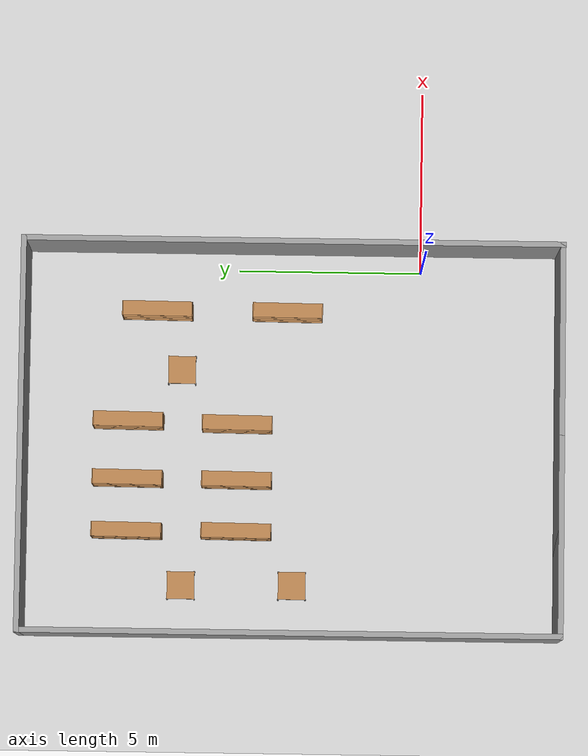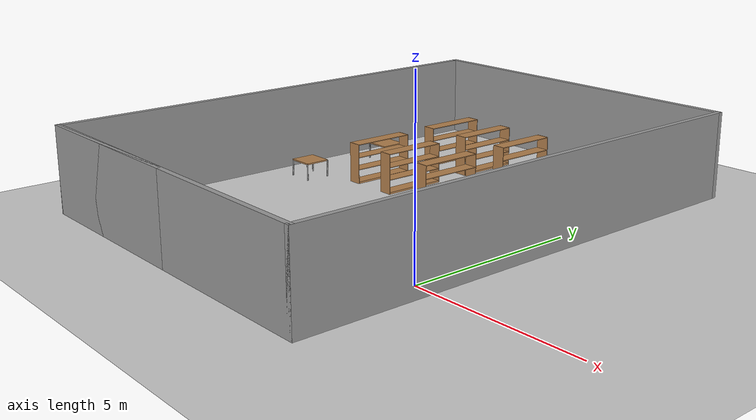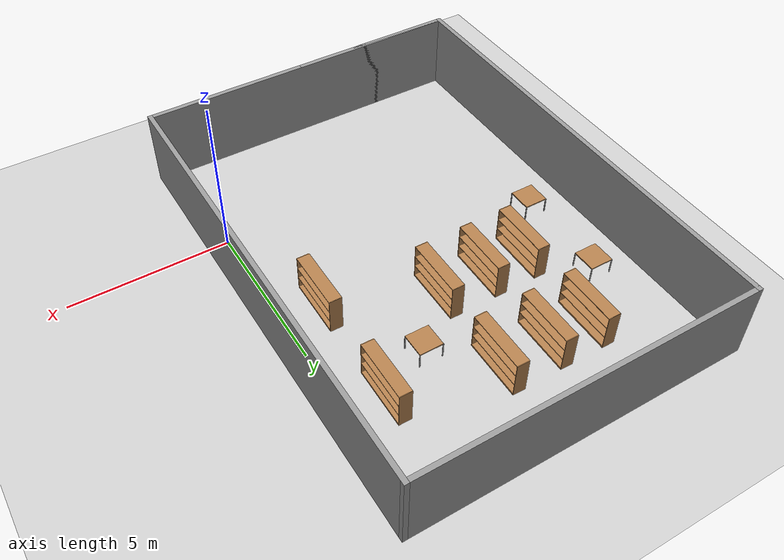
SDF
<sdf version="1.6">
 <world name="default">
  <model name="ground_plane">
   <static>1</static>
   <link name="link">
    <collision name="collision">
     <geometry><plane><normal>0 0 1</normal><size>100 100</size></plane></geometry>
     <surface><friction><ode><mu>100</mu><mu2>50</mu2></ode></friction></surface>
    </collision>
    <visual name="visual">
     <cast_shadows>0</cast_shadows>
     <geometry><plane><normal>0 0 1</normal><size>100 100</size></plane></geometry>
     <material>
      <script><uri>file://media/materials/scripts/gazebo.material</uri><name>Gazebo/Grey</name></script>
     </material>
    </visual>
   </link>
  </model>
  <model name="library_bookshelf_twosided">
   <static>1</static>
   <link name="link">
    <inertial><mass>1</mass></inertial>
    <collision name="left_side">
     <pose>0.95 -0.195 0.6 0 -0 0</pose>
     <geometry><box><size>0.02 0.4 1.2</size></box></geometry>
    </collision>
    <visual name="left_side">
     <pose>0.95 -0.195 0.6 0 -0 0</pose>
     <geometry><box><size>0.02 0.4 1.2</size></box></geometry>
     <material>
      <script><uri>file://media/materials/scripts/gazebo.material</uri><name>Gazebo/Wood</name></script>
     </material>
    </visual>
    <collision name="right_side">
     <pose>-0.95 -0.195 0.6 0 -0 0</pose>
     <geometry><box><size>0.02 0.4 1.2</size></box></geometry>
    </collision>
    <visual name="right_side">
     <pose>-0.95 -0.195 0.6 0 -0 0</pose>
     <geometry><box><size>0.02 0.4 1.2</size></box></geometry>
     <material>
      <script><uri>file://media/materials/scripts/gazebo.material</uri><name>Gazebo/Wood</name></script>
     </material>
    </visual>
    <collision name="bottom">
     <pose>0 -0.195 0.03 0 -0 0</pose>
     <geometry><box><size>1.88 0.4 0.06</size></box></geometry>
    </collision>
    <visual name="bottom">
     <pose>0 -0.195 0.03 0 -0 0</pose>
     <geometry><box><size>1.88 0.4 0.06</size></box></geometry>
     <material>
      <script><uri>file://media/materials/scripts/gazebo.material</uri><name>Gazebo/Wood</name></script>
     </material>
    </visual>
    <collision name="top">
     <pose>0 -0.195 1.19 0 -0 0</pose>
     <geometry><box><size>1.88 0.4 0.02</size></box></geometry>
    </collision>
    <visual name="top">
     <pose>0 -0.195 1.19 0 -0 0</pose>
     <geometry><box><size>1.88 0.4 0.02</size></box></geometry>
     <material>
      <script><uri>file://media/materials/scripts/gazebo.material</uri><name>Gazebo/Wood</name></script>
     </material>
    </visual>
    <collision name="low_shelf">
     <pose>0 -0.195 0.43 0 -0 0</pose>
     <geometry><box><size>1.88 0.4 0.02</size></box></geometry>
    </collision>
    <visual name="low_shelf">
     <pose>0 -0.195 0.43 0 -0 0</pose>
     <geometry><box><size>1.88 0.4 0.02</size></box></geometry>
     <material>
      <script><uri>file://media/materials/scripts/gazebo.material</uri><name>Gazebo/Wood</name></script>
     </material>
    </visual>
    <collision name="high_shelf">
     <pose>0 -0.195 0.8 0 -0 0</pose>
     <geometry><box><size>1.88 0.4 0.02</size></box></geometry>
    </collision>
    <visual name="high_shelf">
     <pose>0 -0.195 0.8 0 -0 0</pose>
     <geometry><box><size>1.88 0.4 0.02</size></box></geometry>
     <material>
      <script><uri>file://media/materials/scripts/gazebo.material</uri><name>Gazebo/Wood</name></script>
     </material>
    </visual>
   </link>
   <pose>-7.03794 7.96964 0 0 0 -1.58098</pose>
  </model>
  <model name="library_bookshelf_twosided_clone">
   <static>1</static>
   <link name="link">
    <inertial><mass>1</mass></inertial>
    <collision name="left_side">
     <pose>0.95 -0.195 0.6 0 -0 0</pose>
     <geometry><box><size>0.02 0.4 1.2</size></box></geometry>
    </collision>
    <visual name="left_side">
     <pose>0.95 -0.195 0.6 0 -0 0</pose>
     <geometry><box><size>0.02 0.4 1.2</size></box></geometry>
     <material>
      <script><uri>file://media/materials/scripts/gazebo.material</uri><name>Gazebo/Wood</name></script>
     </material>
    </visual>
    <collision name="right_side">
     <pose>-0.95 -0.195 0.6 0 -0 0</pose>
     <geometry><box><size>0.02 0.4 1.2</size></box></geometry>
    </collision>
    <visual name="right_side">
     <pose>-0.95 -0.195 0.6 0 -0 0</pose>
     <geometry><box><size>0.02 0.4 1.2</size></box></geometry>
     <material>
      <script><uri>file://media/materials/scripts/gazebo.material</uri><name>Gazebo/Wood</name></script>
     </material>
    </visual>
    <collision name="bottom">
     <pose>0 -0.195 0.03 0 -0 0</pose>
     <geometry><box><size>1.88 0.4 0.06</size></box></geometry>
    </collision>
    <visual name="bottom">
     <pose>0 -0.195 0.03 0 -0 0</pose>
     <geometry><box><size>1.88 0.4 0.06</size></box></geometry>
     <material>
      <script><uri>file://media/materials/scripts/gazebo.material</uri><name>Gazebo/Wood</name></script>
     </material>
    </visual>
    <collision name="top">
     <pose>0 -0.195 1.19 0 -0 0</pose>
     <geometry><box><size>1.88 0.4 0.02</size></box></geometry>
    </collision>
    <visual name="top">
     <pose>0 -0.195 1.19 0 -0 0</pose>
     <geometry><box><size>1.88 0.4 0.02</size></box></geometry>
     <material>
      <script><uri>file://media/materials/scripts/gazebo.material</uri><name>Gazebo/Wood</name></script>
     </material>
    </visual>
    <collision name="low_shelf">
     <pose>0 -0.195 0.43 0 -0 0</pose>
     <geometry><box><size>1.88 0.4 0.02</size></box></geometry>
    </collision>
    <visual name="low_shelf">
     <pose>0 -0.195 0.43 0 -0 0</pose>
     <geometry><box><size>1.88 0.4 0.02</size></box></geometry>
     <material>
      <script><uri>file://media/materials/scripts/gazebo.material</uri><name>Gazebo/Wood</name></script>
     </material>
    </visual>
    <collision name="high_shelf">
     <pose>0 -0.195 0.8 0 -0 0</pose>
     <geometry><box><size>1.88 0.4 0.02</size></box></geometry>
    </collision>
    <visual name="high_shelf">
     <pose>0 -0.195 0.8 0 -0 0</pose>
     <geometry><box><size>1.88 0.4 0.02</size></box></geometry>
     <material>
      <script><uri>file://media/materials/scripts/gazebo.material</uri><name>Gazebo/Wood</name></script>
     </material>
    </visual>
   </link>
   <pose>-7.02783 4.98074 0 0 0 -1.58098</pose>
  </model>
  <model name="library_bookshelf_twosided_clone_2">
   <static>1</static>
   <link name="link">
    <inertial><mass>1</mass></inertial>
    <collision name="left_side">
     <pose>0.95 -0.195 0.6 0 -0 0</pose>
     <geometry><box><size>0.02 0.4 1.2</size></box></geometry>
    </collision>
    <visual name="left_side">
     <pose>0.95 -0.195 0.6 0 -0 0</pose>
     <geometry><box><size>0.02 0.4 1.2</size></box></geometry>
     <material>
      <script><uri>file://media/materials/scripts/gazebo.material</uri><name>Gazebo/Wood</name></script>
     </material>
    </visual>
    <collision name="right_side">
     <pose>-0.95 -0.195 0.6 0 -0 0</pose>
     <geometry><box><size>0.02 0.4 1.2</size></box></geometry>
    </collision>
    <visual name="right_side">
     <pose>-0.95 -0.195 0.6 0 -0 0</pose>
     <geometry><box><size>0.02 0.4 1.2</size></box></geometry>
     <material>
      <script><uri>file://media/materials/scripts/gazebo.material</uri><name>Gazebo/Wood</name></script>
     </material>
    </visual>
    <collision name="bottom">
     <pose>0 -0.195 0.03 0 -0 0</pose>
     <geometry><box><size>1.88 0.4 0.06</size></box></geometry>
    </collision>
    <visual name="bottom">
     <pose>0 -0.195 0.03 0 -0 0</pose>
     <geometry><box><size>1.88 0.4 0.06</size></box></geometry>
     <material>
      <script><uri>file://media/materials/scripts/gazebo.material</uri><name>Gazebo/Wood</name></script>
     </material>
    </visual>
    <collision name="top">
     <pose>0 -0.195 1.19 0 -0 0</pose>
     <geometry><box><size>1.88 0.4 0.02</size></box></geometry>
    </collision>
    <visual name="top">
     <pose>0 -0.195 1.19 0 -0 0</pose>
     <geometry><box><size>1.88 0.4 0.02</size></box></geometry>
     <material>
      <script><uri>file://media/materials/scripts/gazebo.material</uri><name>Gazebo/Wood</name></script>
     </material>
    </visual>
    <collision name="low_shelf">
     <pose>0 -0.195 0.43 0 -0 0</pose>
     <geometry><box><size>1.88 0.4 0.02</size></box></geometry>
    </collision>
    <visual name="low_shelf">
     <pose>0 -0.195 0.43 0 -0 0</pose>
     <geometry><box><size>1.88 0.4 0.02</size></box></geometry>
     <material>
      <script><uri>file://media/materials/scripts/gazebo.material</uri><name>Gazebo/Wood</name></script>
     </material>
    </visual>
    <collision name="high_shelf">
     <pose>0 -0.195 0.8 0 -0 0</pose>
     <geometry><box><size>1.88 0.4 0.02</size></box></geometry>
    </collision>
    <visual name="high_shelf">
     <pose>0 -0.195 0.8 0 -0 0</pose>
     <geometry><box><size>1.88 0.4 0.02</size></box></geometry>
     <material>
      <script><uri>file://media/materials/scripts/gazebo.material</uri><name>Gazebo/Wood</name></script>
     </material>
    </visual>
   </link>
   <pose>-5.62201 4.9859 0 0 0 -1.58098</pose>
  </model>
  <model name="library_bookshelf_twosided_clone_3">
   <static>1</static>
   <link name="link">
    <inertial><mass>1</mass></inertial>
    <collision name="left_side">
     <pose>0.95 -0.195 0.6 0 -0 0</pose>
     <geometry><box><size>0.02 0.4 1.2</size></box></geometry>
    </collision>
    <visual name="left_side">
     <pose>0.95 -0.195 0.6 0 -0 0</pose>
     <geometry><box><size>0.02 0.4 1.2</size></box></geometry>
     <material>
      <script><uri>file://media/materials/scripts/gazebo.material</uri><name>Gazebo/Wood</name></script>
     </material>
    </visual>
    <collision name="right_side">
     <pose>-0.95 -0.195 0.6 0 -0 0</pose>
     <geometry><box><size>0.02 0.4 1.2</size></box></geometry>
    </collision>
    <visual name="right_side">
     <pose>-0.95 -0.195 0.6 0 -0 0</pose>
     <geometry><box><size>0.02 0.4 1.2</size></box></geometry>
     <material>
      <script><uri>file://media/materials/scripts/gazebo.material</uri><name>Gazebo/Wood</name></script>
     </material>
    </visual>
    <collision name="bottom">
     <pose>0 -0.195 0.03 0 -0 0</pose>
     <geometry><box><size>1.88 0.4 0.06</size></box></geometry>
    </collision>
    <visual name="bottom">
     <pose>0 -0.195 0.03 0 -0 0</pose>
     <geometry><box><size>1.88 0.4 0.06</size></box></geometry>
     <material>
      <script><uri>file://media/materials/scripts/gazebo.material</uri><name>Gazebo/Wood</name></script>
     </material>
    </visual>
    <collision name="top">
     <pose>0 -0.195 1.19 0 -0 0</pose>
     <geometry><box><size>1.88 0.4 0.02</size></box></geometry>
    </collision>
    <visual name="top">
     <pose>0 -0.195 1.19 0 -0 0</pose>
     <geometry><box><size>1.88 0.4 0.02</size></box></geometry>
     <material>
      <script><uri>file://media/materials/scripts/gazebo.material</uri><name>Gazebo/Wood</name></script>
     </material>
    </visual>
    <collision name="low_shelf">
     <pose>0 -0.195 0.43 0 -0 0</pose>
     <geometry><box><size>1.88 0.4 0.02</size></box></geometry>
    </collision>
    <visual name="low_shelf">
     <pose>0 -0.195 0.43 0 -0 0</pose>
     <geometry><box><size>1.88 0.4 0.02</size></box></geometry>
     <material>
      <script><uri>file://media/materials/scripts/gazebo.material</uri><name>Gazebo/Wood</name></script>
     </material>
    </visual>
    <collision name="high_shelf">
     <pose>0 -0.195 0.8 0 -0 0</pose>
     <geometry><box><size>1.88 0.4 0.02</size></box></geometry>
    </collision>
    <visual name="high_shelf">
     <pose>0 -0.195 0.8 0 -0 0</pose>
     <geometry><box><size>1.88 0.4 0.02</size></box></geometry>
     <material>
      <script><uri>file://media/materials/scripts/gazebo.material</uri><name>Gazebo/Wood</name></script>
     </material>
    </visual>
   </link>
   <pose>-5.60611 7.96563 0 0 0 -1.58098</pose>
  </model>
  <model name="library_bookshelf_twosided_clone_5">
   <static>1</static>
   <link name="link">
    <inertial><mass>1</mass></inertial>
    <collision name="left_side">
     <pose>0.95 -0.195 0.6 0 -0 0</pose>
     <geometry><box><size>0.02 0.4 1.2</size></box></geometry>
    </collision>
    <visual name="left_side">
     <pose>0.95 -0.195 0.6 0 -0 0</pose>
     <geometry><box><size>0.02 0.4 1.2</size></box></geometry>
     <material>
      <script><uri>file://media/materials/scripts/gazebo.material</uri><name>Gazebo/Wood</name></script>
     </material>
    </visual>
    <collision name="right_side">
     <pose>-0.95 -0.195 0.6 0 -0 0</pose>
     <geometry><box><size>0.02 0.4 1.2</size></box></geometry>
    </collision>
    <visual name="right_side">
     <pose>-0.95 -0.195 0.6 0 -0 0</pose>
     <geometry><box><size>0.02 0.4 1.2</size></box></geometry>
     <material>
      <script><uri>file://media/materials/scripts/gazebo.material</uri><name>Gazebo/Wood</name></script>
     </material>
    </visual>
    <collision name="bottom">
     <pose>0 -0.195 0.03 0 -0 0</pose>
     <geometry><box><size>1.88 0.4 0.06</size></box></geometry>
    </collision>
    <visual name="bottom">
     <pose>0 -0.195 0.03 0 -0 0</pose>
     <geometry><box><size>1.88 0.4 0.06</size></box></geometry>
     <material>
      <script><uri>file://media/materials/scripts/gazebo.material</uri><name>Gazebo/Wood</name></script>
     </material>
    </visual>
    <collision name="top">
     <pose>0 -0.195 1.19 0 -0 0</pose>
     <geometry><box><size>1.88 0.4 0.02</size></box></geometry>
    </collision>
    <visual name="top">
     <pose>0 -0.195 1.19 0 -0 0</pose>
     <geometry><box><size>1.88 0.4 0.02</size></box></geometry>
     <material>
      <script><uri>file://media/materials/scripts/gazebo.material</uri><name>Gazebo/Wood</name></script>
     </material>
    </visual>
    <collision name="low_shelf">
     <pose>0 -0.195 0.43 0 -0 0</pose>
     <geometry><box><size>1.88 0.4 0.02</size></box></geometry>
    </collision>
    <visual name="low_shelf">
     <pose>0 -0.195 0.43 0 -0 0</pose>
     <geometry><box><size>1.88 0.4 0.02</size></box></geometry>
     <material>
      <script><uri>file://media/materials/scripts/gazebo.material</uri><name>Gazebo/Wood</name></script>
     </material>
    </visual>
    <collision name="high_shelf">
     <pose>0 -0.195 0.8 0 -0 0</pose>
     <geometry><box><size>1.88 0.4 0.02</size></box></geometry>
    </collision>
    <visual name="high_shelf">
     <pose>0 -0.195 0.8 0 -0 0</pose>
     <geometry><box><size>1.88 0.4 0.02</size></box></geometry>
     <material>
      <script><uri>file://media/materials/scripts/gazebo.material</uri><name>Gazebo/Wood</name></script>
     </material>
    </visual>
   </link>
   <pose>-4.0842 4.98932 0 0 0 -1.58098</pose>
  </model>
  <model name="library_bookshelf_twosided_clone_6">
   <static>1</static>
   <link name="link">
    <inertial><mass>1</mass></inertial>
    <collision name="left_side">
     <pose>0.95 -0.195 0.6 0 -0 0</pose>
     <geometry><box><size>0.02 0.4 1.2</size></box></geometry>
    </collision>
    <visual name="left_side">
     <pose>0.95 -0.195 0.6 0 -0 0</pose>
     <geometry><box><size>0.02 0.4 1.2</size></box></geometry>
     <material>
      <script><uri>file://media/materials/scripts/gazebo.material</uri><name>Gazebo/Wood</name></script>
     </material>
    </visual>
    <collision name="right_side">
     <pose>-0.95 -0.195 0.6 0 -0 0</pose>
     <geometry><box><size>0.02 0.4 1.2</size></box></geometry>
    </collision>
    <visual name="right_side">
     <pose>-0.95 -0.195 0.6 0 -0 0</pose>
     <geometry><box><size>0.02 0.4 1.2</size></box></geometry>
     <material>
      <script><uri>file://media/materials/scripts/gazebo.material</uri><name>Gazebo/Wood</name></script>
     </material>
    </visual>
    <collision name="bottom">
     <pose>0 -0.195 0.03 0 -0 0</pose>
     <geometry><box><size>1.88 0.4 0.06</size></box></geometry>
    </collision>
    <visual name="bottom">
     <pose>0 -0.195 0.03 0 -0 0</pose>
     <geometry><box><size>1.88 0.4 0.06</size></box></geometry>
     <material>
      <script><uri>file://media/materials/scripts/gazebo.material</uri><name>Gazebo/Wood</name></script>
     </material>
    </visual>
    <collision name="top">
     <pose>0 -0.195 1.19 0 -0 0</pose>
     <geometry><box><size>1.88 0.4 0.02</size></box></geometry>
    </collision>
    <visual name="top">
     <pose>0 -0.195 1.19 0 -0 0</pose>
     <geometry><box><size>1.88 0.4 0.02</size></box></geometry>
     <material>
      <script><uri>file://media/materials/scripts/gazebo.material</uri><name>Gazebo/Wood</name></script>
     </material>
    </visual>
    <collision name="low_shelf">
     <pose>0 -0.195 0.43 0 -0 0</pose>
     <geometry><box><size>1.88 0.4 0.02</size></box></geometry>
    </collision>
    <visual name="low_shelf">
     <pose>0 -0.195 0.43 0 -0 0</pose>
     <geometry><box><size>1.88 0.4 0.02</size></box></geometry>
     <material>
      <script><uri>file://media/materials/scripts/gazebo.material</uri><name>Gazebo/Wood</name></script>
     </material>
    </visual>
    <collision name="high_shelf">
     <pose>0 -0.195 0.8 0 -0 0</pose>
     <geometry><box><size>1.88 0.4 0.02</size></box></geometry>
    </collision>
    <visual name="high_shelf">
     <pose>0 -0.195 0.8 0 -0 0</pose>
     <geometry><box><size>1.88 0.4 0.02</size></box></geometry>
     <material>
      <script><uri>file://media/materials/scripts/gazebo.material</uri><name>Gazebo/Wood</name></script>
     </material>
    </visual>
   </link>
   <pose>-4.02015 7.96793 0 0 0 -1.58098</pose>
  </model>
  <model name="library_bookshelf_twosided_clone_4_clone_0">
   <static>1</static>
   <link name="link">
    <inertial><mass>1</mass></inertial>
    <collision name="left_side">
     <pose>0.95 -0.195 0.6 0 -0 0</pose>
     <geometry><box><size>0.02 0.4 1.2</size></box></geometry>
    </collision>
    <visual name="left_side">
     <pose>0.95 -0.195 0.6 0 -0 0</pose>
     <geometry><box><size>0.02 0.4 1.2</size></box></geometry>
     <material>
      <script><uri>file://media/materials/scripts/gazebo.material</uri><name>Gazebo/Wood</name></script>
     </material>
    </visual>
    <collision name="right_side">
     <pose>-0.95 -0.195 0.6 0 -0 0</pose>
     <geometry><box><size>0.02 0.4 1.2</size></box></geometry>
    </collision>
    <visual name="right_side">
     <pose>-0.95 -0.195 0.6 0 -0 0</pose>
     <geometry><box><size>0.02 0.4 1.2</size></box></geometry>
     <material>
      <script><uri>file://media/materials/scripts/gazebo.material</uri><name>Gazebo/Wood</name></script>
     </material>
    </visual>
    <collision name="bottom">
     <pose>0 -0.195 0.03 0 -0 0</pose>
     <geometry><box><size>1.88 0.4 0.06</size></box></geometry>
    </collision>
    <visual name="bottom">
     <pose>0 -0.195 0.03 0 -0 0</pose>
     <geometry><box><size>1.88 0.4 0.06</size></box></geometry>
     <material>
      <script><uri>file://media/materials/scripts/gazebo.material</uri><name>Gazebo/Wood</name></script>
     </material>
    </visual>
    <collision name="top">
     <pose>0 -0.195 1.19 0 -0 0</pose>
     <geometry><box><size>1.88 0.4 0.02</size></box></geometry>
    </collision>
    <visual name="top">
     <pose>0 -0.195 1.19 0 -0 0</pose>
     <geometry><box><size>1.88 0.4 0.02</size></box></geometry>
     <material>
      <script><uri>file://media/materials/scripts/gazebo.material</uri><name>Gazebo/Wood</name></script>
     </material>
    </visual>
    <collision name="low_shelf">
     <pose>0 -0.195 0.43 0 -0 0</pose>
     <geometry><box><size>1.88 0.4 0.02</size></box></geometry>
    </collision>
    <visual name="low_shelf">
     <pose>0 -0.195 0.43 0 -0 0</pose>
     <geometry><box><size>1.88 0.4 0.02</size></box></geometry>
     <material>
      <script><uri>file://media/materials/scripts/gazebo.material</uri><name>Gazebo/Wood</name></script>
     </material>
    </visual>
    <collision name="high_shelf">
     <pose>0 -0.195 0.8 0 -0 0</pose>
     <geometry><box><size>1.88 0.4 0.02</size></box></geometry>
    </collision>
    <visual name="high_shelf">
     <pose>0 -0.195 0.8 0 -0 0</pose>
     <geometry><box><size>1.88 0.4 0.02</size></box></geometry>
     <material>
      <script><uri>file://media/materials/scripts/gazebo.material</uri><name>Gazebo/Wood</name></script>
     </material>
    </visual>
   </link>
   <pose>-0.992031 3.65516 0 0 0 -1.58098</pose>
  </model>
  <model name="library_bookshelf_twosided_clone_4_clone_1">
   <static>1</static>
   <link name="link">
    <inertial><mass>1</mass></inertial>
    <collision name="left_side">
     <pose>0.95 -0.195 0.6 0 -0 0</pose>
     <geometry><box><size>0.02 0.4 1.2</size></box></geometry>
    </collision>
    <visual name="left_side">
     <pose>0.95 -0.195 0.6 0 -0 0</pose>
     <geometry><box><size>0.02 0.4 1.2</size></box></geometry>
     <material>
      <script><uri>file://media/materials/scripts/gazebo.material</uri><name>Gazebo/Wood</name></script>
     </material>
    </visual>
    <collision name="right_side">
     <pose>-0.95 -0.195 0.6 0 -0 0</pose>
     <geometry><box><size>0.02 0.4 1.2</size></box></geometry>
    </collision>
    <visual name="right_side">
     <pose>-0.95 -0.195 0.6 0 -0 0</pose>
     <geometry><box><size>0.02 0.4 1.2</size></box></geometry>
     <material>
      <script><uri>file://media/materials/scripts/gazebo.material</uri><name>Gazebo/Wood</name></script>
     </material>
    </visual>
    <collision name="bottom">
     <pose>0 -0.195 0.03 0 -0 0</pose>
     <geometry><box><size>1.88 0.4 0.06</size></box></geometry>
    </collision>
    <visual name="bottom">
     <pose>0 -0.195 0.03 0 -0 0</pose>
     <geometry><box><size>1.88 0.4 0.06</size></box></geometry>
     <material>
      <script><uri>file://media/materials/scripts/gazebo.material</uri><name>Gazebo/Wood</name></script>
     </material>
    </visual>
    <collision name="top">
     <pose>0 -0.195 1.19 0 -0 0</pose>
     <geometry><box><size>1.88 0.4 0.02</size></box></geometry>
    </collision>
    <visual name="top">
     <pose>0 -0.195 1.19 0 -0 0</pose>
     <geometry><box><size>1.88 0.4 0.02</size></box></geometry>
     <material>
      <script><uri>file://media/materials/scripts/gazebo.material</uri><name>Gazebo/Wood</name></script>
     </material>
    </visual>
    <collision name="low_shelf">
     <pose>0 -0.195 0.43 0 -0 0</pose>
     <geometry><box><size>1.88 0.4 0.02</size></box></geometry>
    </collision>
    <visual name="low_shelf">
     <pose>0 -0.195 0.43 0 -0 0</pose>
     <geometry><box><size>1.88 0.4 0.02</size></box></geometry>
     <material>
      <script><uri>file://media/materials/scripts/gazebo.material</uri><name>Gazebo/Wood</name></script>
     </material>
    </visual>
    <collision name="high_shelf">
     <pose>0 -0.195 0.8 0 -0 0</pose>
     <geometry><box><size>1.88 0.4 0.02</size></box></geometry>
    </collision>
    <visual name="high_shelf">
     <pose>0 -0.195 0.8 0 -0 0</pose>
     <geometry><box><size>1.88 0.4 0.02</size></box></geometry>
     <material>
      <script><uri>file://media/materials/scripts/gazebo.material</uri><name>Gazebo/Wood</name></script>
     </material>
    </visual>
   </link>
   <pose>-0.983648 7.21776 0 0 0 -1.58098</pose>
  </model>
  <model name="table_clone_0">
   <static>1</static>
   <link name="link">
    <collision name="surface">
     <pose>0 0 0.5 0 -0 0</pose>
     <geometry><box><size>0.75 0.75 0.04</size></box></geometry>
    </collision>
    <visual name="visual1">
     <pose>0 0 0.5 0 -0 0</pose>
     <geometry><box><size>0.75 0.75 0.04</size></box></geometry>
     <material>
      <script><uri>file://media/materials/scripts/gazebo.material</uri><name>Gazebo/Wood</name></script>
     </material>
    </visual>
    <collision name="front_left_leg">
     <pose>0.37 0.37 0.25 0 -0 0</pose>
     <geometry><cylinder><radius>0.02</radius><length>0.5</length></cylinder></geometry>
    </collision>
    <visual name="front_left_leg">
     <pose>0.37 0.37 0.25 0 -0 0</pose>
     <geometry><cylinder><radius>0.02</radius><length>0.5</length></cylinder></geometry>
     <material>
      <script><uri>file://media/materials/scripts/gazebo.material</uri><name>Gazebo/Grey</name></script>
     </material>
    </visual>
    <collision name="front_right_leg">
     <pose>0.37 -0.37 0.25 0 -0 0</pose>
     <geometry><cylinder><radius>0.02</radius><length>0.5</length></cylinder></geometry>
    </collision>
    <visual name="front_right_leg">
     <pose>0.37 -0.37 0.25 0 -0 0</pose>
     <geometry><cylinder><radius>0.02</radius><length>0.5</length></cylinder></geometry>
     <material>
      <script><uri>file://media/materials/scripts/gazebo.material</uri><name>Gazebo/Grey</name></script>
     </material>
    </visual>
    <collision name="back_right_leg">
     <pose>-0.37 -0.37 0.25 0 -0 0</pose>
     <geometry><cylinder><radius>0.02</radius><length>0.5</length></cylinder></geometry>
    </collision>
    <visual name="back_right_leg">
     <pose>-0.37 -0.37 0.25 0 -0 0</pose>
     <geometry><cylinder><radius>0.02</radius><length>0.5</length></cylinder></geometry>
     <material>
      <script><uri>file://media/materials/scripts/gazebo.material</uri><name>Gazebo/Grey</name></script>
     </material>
    </visual>
    <collision name="back_left_leg">
     <pose>-0.37 0.37 0.25 0 -0 0</pose>
     <geometry><cylinder><radius>0.02</radius><length>0.5</length></cylinder></geometry>
    </collision>
    <visual name="back_left_leg">
     <pose>-0.37 0.37 0.25 0 -0 0</pose>
     <geometry><cylinder><radius>0.02</radius><length>0.5</length></cylinder></geometry>
     <material>
      <script><uri>file://media/materials/scripts/gazebo.material</uri><name>Gazebo/Grey</name></script>
     </material>
    </visual>
    <velocity_decay><linear>0</linear><angular>0</angular></velocity_decay>
   </link>
   <pose>-2.79311 6.53017 0 0 -0 0</pose>
  </model>
  <model name="table_clone_2">
   <static>1</static>
   <link name="link">
    <collision name="surface">
     <pose>0 0 0.5 0 -0 0</pose>
     <geometry><box><size>0.75 0.75 0.04</size></box></geometry>
    </collision>
    <visual name="visual1">
     <pose>0 0 0.5 0 -0 0</pose>
     <geometry><box><size>0.75 0.75 0.04</size></box></geometry>
     <material>
      <script><uri>file://media/materials/scripts/gazebo.material</uri><name>Gazebo/Wood</name></script>
     </material>
    </visual>
    <collision name="front_left_leg">
     <pose>0.37 0.37 0.25 0 -0 0</pose>
     <geometry><cylinder><radius>0.02</radius><length>0.5</length></cylinder></geometry>
    </collision>
    <visual name="front_left_leg">
     <pose>0.37 0.37 0.25 0 -0 0</pose>
     <geometry><cylinder><radius>0.02</radius><length>0.5</length></cylinder></geometry>
     <material>
      <script><uri>file://media/materials/scripts/gazebo.material</uri><name>Gazebo/Grey</name></script>
     </material>
    </visual>
    <collision name="front_right_leg">
     <pose>0.37 -0.37 0.25 0 -0 0</pose>
     <geometry><cylinder><radius>0.02</radius><length>0.5</length></cylinder></geometry>
    </collision>
    <visual name="front_right_leg">
     <pose>0.37 -0.37 0.25 0 -0 0</pose>
     <geometry><cylinder><radius>0.02</radius><length>0.5</length></cylinder></geometry>
     <material>
      <script><uri>file://media/materials/scripts/gazebo.material</uri><name>Gazebo/Grey</name></script>
     </material>
    </visual>
    <collision name="back_right_leg">
     <pose>-0.37 -0.37 0.25 0 -0 0</pose>
     <geometry><cylinder><radius>0.02</radius><length>0.5</length></cylinder></geometry>
    </collision>
    <visual name="back_right_leg">
     <pose>-0.37 -0.37 0.25 0 -0 0</pose>
     <geometry><cylinder><radius>0.02</radius><length>0.5</length></cylinder></geometry>
     <material>
      <script><uri>file://media/materials/scripts/gazebo.material</uri><name>Gazebo/Grey</name></script>
     </material>
    </visual>
    <collision name="back_left_leg">
     <pose>-0.37 0.37 0.25 0 -0 0</pose>
     <geometry><cylinder><radius>0.02</radius><length>0.5</length></cylinder></geometry>
    </collision>
    <visual name="back_left_leg">
     <pose>-0.37 0.37 0.25 0 -0 0</pose>
     <geometry><cylinder><radius>0.02</radius><length>0.5</length></cylinder></geometry>
     <material>
      <script><uri>file://media/materials/scripts/gazebo.material</uri><name>Gazebo/Grey</name></script>
     </material>
    </visual>
    <velocity_decay><linear>0</linear><angular>0</angular></velocity_decay>
   </link>
   <pose>-8.67679 3.44581 0 0 -0 0</pose>
  </model>
  <model name="table_clone_3">
   <static>1</static>
   <link name="link">
    <collision name="surface">
     <pose>0 0 0.5 0 -0 0</pose>
     <geometry><box><size>0.75 0.75 0.04</size></box></geometry>
    </collision>
    <visual name="visual1">
     <pose>0 0 0.5 0 -0 0</pose>
     <geometry><box><size>0.75 0.75 0.04</size></box></geometry>
     <material>
      <script><uri>file://media/materials/scripts/gazebo.material</uri><name>Gazebo/Wood</name></script>
     </material>
    </visual>
    <collision name="front_left_leg">
     <pose>0.37 0.37 0.25 0 -0 0</pose>
     <geometry><cylinder><radius>0.02</radius><length>0.5</length></cylinder></geometry>
    </collision>
    <visual name="front_left_leg">
     <pose>0.37 0.37 0.25 0 -0 0</pose>
     <geometry><cylinder><radius>0.02</radius><length>0.5</length></cylinder></geometry>
     <material>
      <script><uri>file://media/materials/scripts/gazebo.material</uri><name>Gazebo/Grey</name></script>
     </material>
    </visual>
    <collision name="front_right_leg">
     <pose>0.37 -0.37 0.25 0 -0 0</pose>
     <geometry><cylinder><radius>0.02</radius><length>0.5</length></cylinder></geometry>
    </collision>
    <visual name="front_right_leg">
     <pose>0.37 -0.37 0.25 0 -0 0</pose>
     <geometry><cylinder><radius>0.02</radius><length>0.5</length></cylinder></geometry>
     <material>
      <script><uri>file://media/materials/scripts/gazebo.material</uri><name>Gazebo/Grey</name></script>
     </material>
    </visual>
    <collision name="back_right_leg">
     <pose>-0.37 -0.37 0.25 0 -0 0</pose>
     <geometry><cylinder><radius>0.02</radius><length>0.5</length></cylinder></geometry>
    </collision>
    <visual name="back_right_leg">
     <pose>-0.37 -0.37 0.25 0 -0 0</pose>
     <geometry><cylinder><radius>0.02</radius><length>0.5</length></cylinder></geometry>
     <material>
      <script><uri>file://media/materials/scripts/gazebo.material</uri><name>Gazebo/Grey</name></script>
     </material>
    </visual>
    <collision name="back_left_leg">
     <pose>-0.37 0.37 0.25 0 -0 0</pose>
     <geometry><cylinder><radius>0.02</radius><length>0.5</length></cylinder></geometry>
    </collision>
    <visual name="back_left_leg">
     <pose>-0.37 0.37 0.25 0 -0 0</pose>
     <geometry><cylinder><radius>0.02</radius><length>0.5</length></cylinder></geometry>
     <material>
      <script><uri>file://media/materials/scripts/gazebo.material</uri><name>Gazebo/Grey</name></script>
     </material>
    </visual>
    <velocity_decay><linear>0</linear><angular>0</angular></velocity_decay>
   </link>
   <pose>-8.69998 6.47888 0 0 -0 0</pose>
  </model>
  <model name="Untitled">
   <pose>-4.74 3.52 0 0 -0 0</pose>
   <link name="Wall_0">
    <collision name="Wall_0_Collision">
     <geometry><box><size>5.5 0.15 2.5</size></box></geometry>
     <pose>0 0 1.25 0 -0 0</pose>
    </collision>
    <visual name="Wall_0_Visual">
     <pose>0 0 1.25 0 -0 0</pose>
     <geometry><box><size>5.5 0.15 2.5</size></box></geometry>
     <material>
      <script><uri>file://media/materials/scripts/gazebo.material</uri><name>Gazebo/Grey</name></script>
      <ambient>1 1 1 1</ambient>
     </material>
     <meta><layer>0</layer></meta>
    </visual>
    <pose>-2.625 -7.3 0 0 -0 3.14159</pose>
   </link>
   <link name="Wall_1">
    <collision name="Wall_1_Collision">
     <geometry><box><size>10.75 0.15 2.5</size></box></geometry>
     <pose>0 0 1.25 0 -0 0</pose>
    </collision>
    <visual name="Wall_1_Visual">
     <pose>0 0 1.25 0 -0 0</pose>
     <geometry><box><size>10.75 0.15 2.5</size></box></geometry>
     <material>
      <script><uri>file://media/materials/scripts/gazebo.material</uri><name>Gazebo/Grey</name></script>
      <ambient>1 1 1 1</ambient>
     </material>
     <meta><layer>0</layer></meta>
    </visual>
    <pose>0 -7.3 0 0 -0 0</pose>
   </link>
   <link name="Wall_2">
    <collision name="Wall_2_Collision">
     <geometry><box><size>14.75 0.15 2.5</size></box></geometry>
     <pose>0 0 1.25 0 -0 0</pose>
    </collision>
    <visual name="Wall_2_Visual">
     <pose>0 0 1.25 0 -0 0</pose>
     <geometry><box><size>14.75 0.15 2.5</size></box></geometry>
     <material>
      <script><uri>file://media/materials/scripts/gazebo.material</uri><name>Gazebo/Grey</name></script>
      <ambient>1 1 1 1</ambient>
     </material>
     <meta><layer>0</layer></meta>
    </visual>
    <pose>5.3 0 0 0 -0 1.5708</pose>
   </link>
   <link name="Wall_3">
    <collision name="Wall_3_Collision">
     <geometry><box><size>10.75 0.15 2.5</size></box></geometry>
     <pose>0 0 1.25 0 -0 0</pose>
    </collision>
    <visual name="Wall_3_Visual">
     <pose>0 0 1.25 0 -0 0</pose>
     <geometry><box><size>10.75 0.15 2.5</size></box></geometry>
     <material>
      <script><uri>file://media/materials/scripts/gazebo.material</uri><name>Gazebo/Grey</name></script>
      <ambient>1 1 1 1</ambient>
     </material>
     <meta><layer>0</layer></meta>
    </visual>
    <pose>0 7.3 0 0 -0 3.14159</pose>
   </link>
   <link name="Wall_4">
    <collision name="Wall_4_Collision">
     <geometry><box><size>14.75 0.15 2.5</size></box></geometry>
     <pose>0 0 1.25 0 -0 0</pose>
    </collision>
    <visual name="Wall_4_Visual">
     <pose>0 0 1.25 0 -0 0</pose>
     <geometry><box><size>14.75 0.15 2.5</size></box></geometry>
     <material>
      <script><uri>file://media/materials/scripts/gazebo.material</uri><name>Gazebo/Grey</name></script>
      <ambient>1 1 1 1</ambient>
     </material>
     <meta><layer>0</layer></meta>
    </visual>
    <pose>-5.3 0 0 0 -0 -1.5708</pose>
   </link>
   <static>1</static>
  </model>
 </world>
</sdf>
